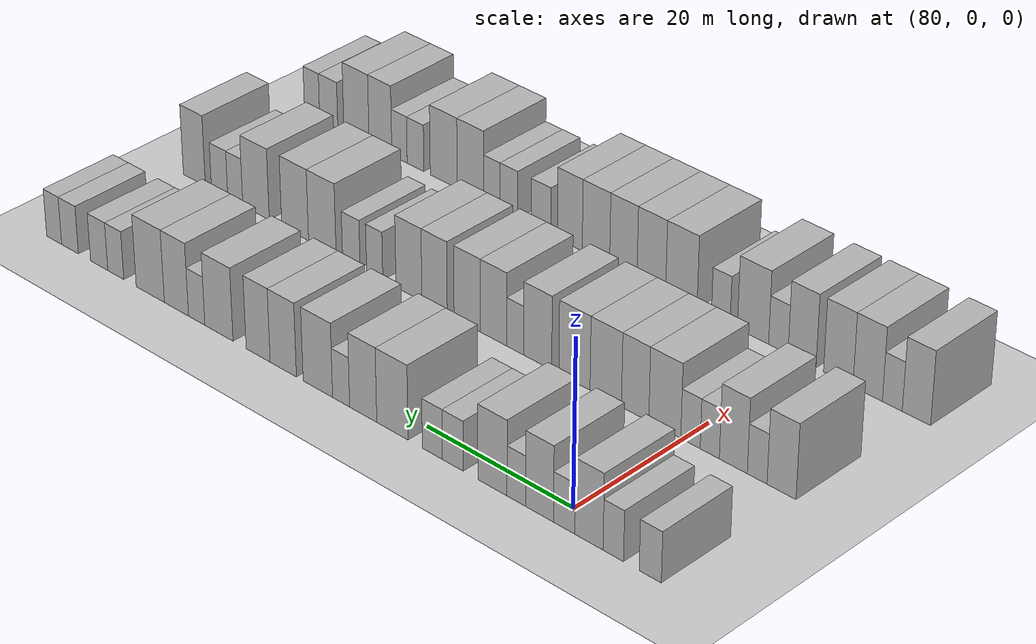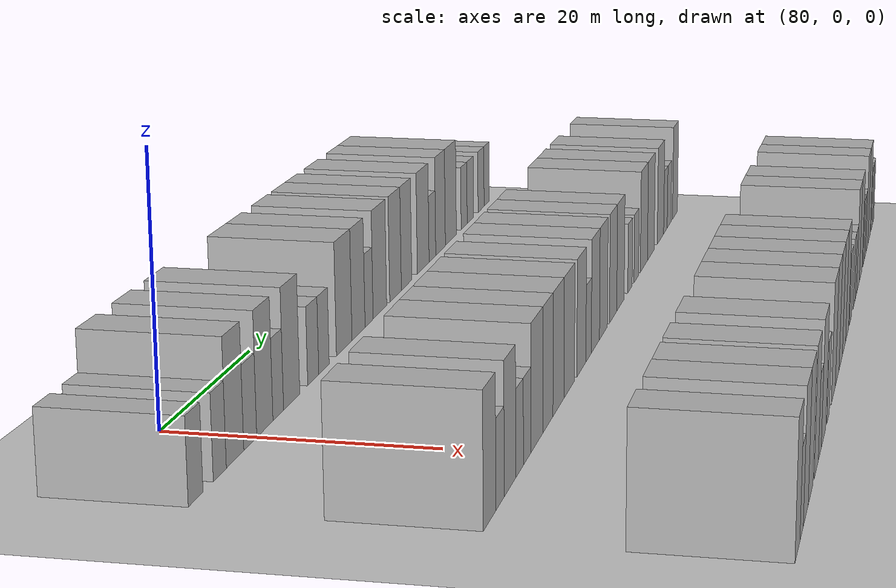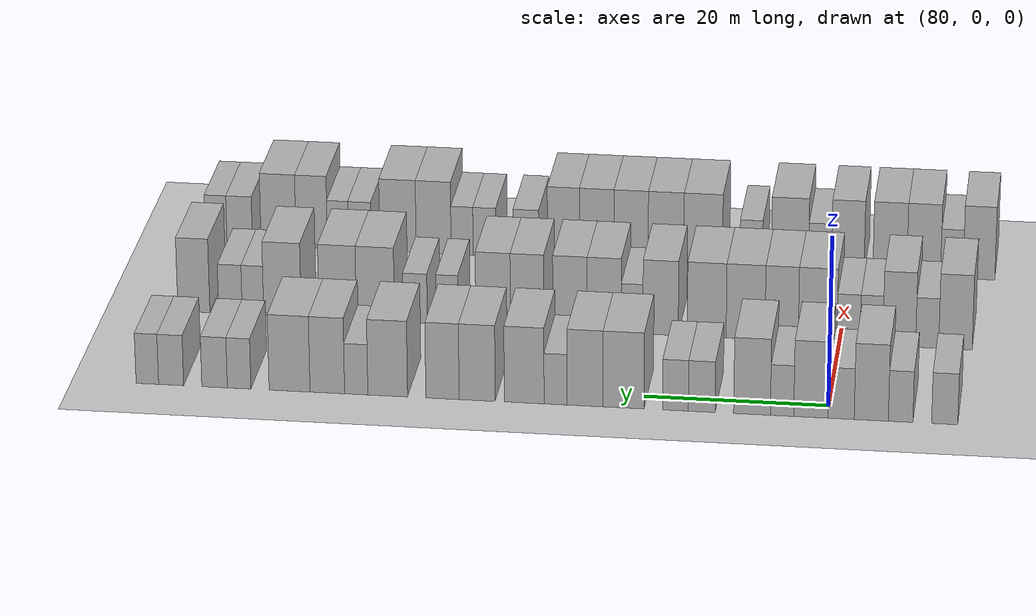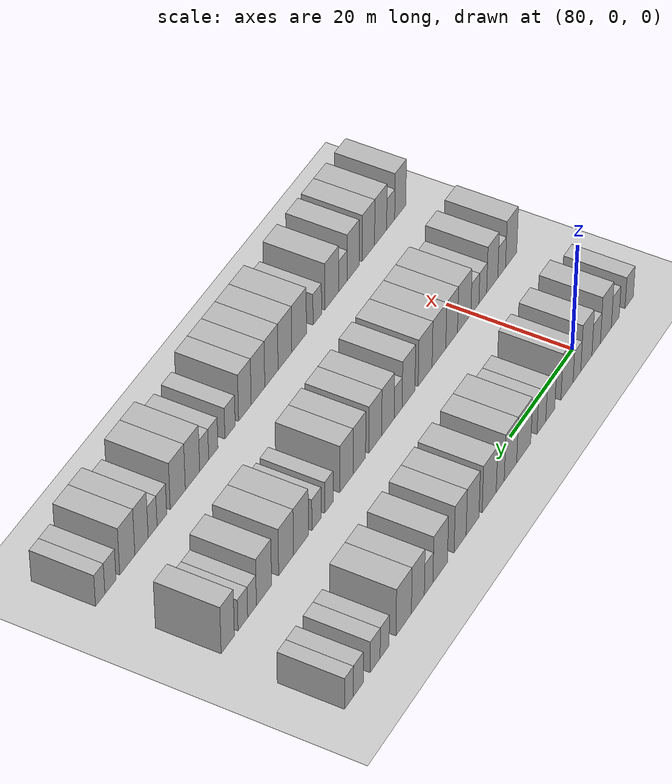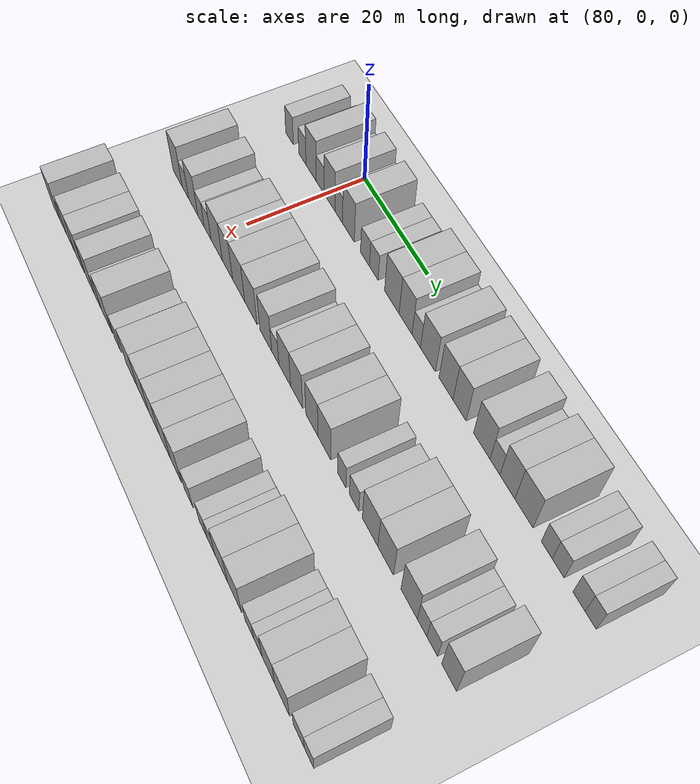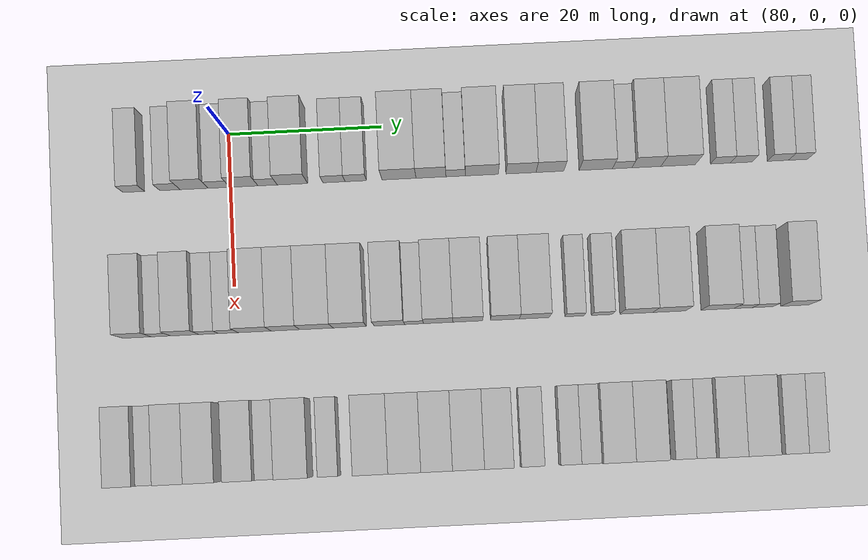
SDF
<sdf version="1.6">
 <world name="default">
  <include>
   <name>ground_plane_2</name>
   <uri>model://HANNAS_ground_plane</uri>
   <pose>100 0 0  0 0 0</pose>
  </include>
  <model name="building_606">
   <static>1</static>
   <pose>82.0000 -12.5891 0 0.000000 0.000000 0.000000</pose>
   <link name="link">
    <pose>0 0 3.00 0 0 0</pose>
    <collision name="collision"><geometry><box><size>10.0000 2.8003 6.0000</size></box></geometry></collision>
    <visual name="visual">
     <cast_shadows>0</cast_shadows>
     <geometry><box><size>10.0000 2.8003 6.0000</size></box></geometry>
     <material>
      <script>
       <uri>model://HANNAS_wall/materials/scripts</uri>
       <uri>model://HANNAS_wall/materials/textures</uri>
       <name>vrc/HANNAS_wall</name>
      </script>
     </material>
    </visual>
   </link>
  </model>
  <model name="building_607">
   <static>1</static>
   <pose>82.0000 -7.8719 0 0.000000 0.000000 0.000000</pose>
   <link name="link">
    <pose>0 0 3.00 0 0 0</pose>
    <collision name="collision"><geometry><box><size>10.0000 2.6342 6.0000</size></box></geometry></collision>
    <visual name="visual">
     <cast_shadows>0</cast_shadows>
     <geometry><box><size>10.0000 2.6342 6.0000</size></box></geometry>
     <material>
      <script>
       <uri>model://HANNAS_wall/materials/scripts</uri>
       <uri>model://HANNAS_wall/materials/textures</uri>
       <name>vrc/HANNAS_wall</name>
      </script>
     </material>
    </visual>
   </link>
  </model>
  <model name="building_608">
   <static>1</static>
   <pose>82.0000 -4.7250 0 0.000000 0.000000 0.000000</pose>
   <link name="link">
    <pose>0 0 4.50 0 0 0</pose>
    <collision name="collision"><geometry><box><size>10.0000 3.6595 9.0000</size></box></geometry></collision>
    <visual name="visual">
     <cast_shadows>0</cast_shadows>
     <geometry><box><size>10.0000 3.6595 9.0000</size></box></geometry>
     <material>
      <script>
       <uri>model://HANNAS_wall/materials/scripts</uri>
       <uri>model://HANNAS_wall/materials/textures</uri>
       <name>vrc/HANNAS_wall</name>
      </script>
     </material>
    </visual>
   </link>
  </model>
  <model name="building_609">
   <static>1</static>
   <pose>82.0000 -1.4847 0 0.000000 0.000000 0.000000</pose>
   <link name="link">
    <pose>0 0 3.00 0 0 0</pose>
    <collision name="collision"><geometry><box><size>10.0000 2.8210 6.0000</size></box></geometry></collision>
    <visual name="visual">
     <cast_shadows>0</cast_shadows>
     <geometry><box><size>10.0000 2.8210 6.0000</size></box></geometry>
     <material>
      <script>
       <uri>model://HANNAS_wall/materials/scripts</uri>
       <uri>model://HANNAS_wall/materials/textures</uri>
       <name>vrc/HANNAS_wall</name>
      </script>
     </material>
    </visual>
   </link>
  </model>
  <model name="building_610">
   <static>1</static>
   <pose>82.0000 1.7644 0 0.000000 0.000000 0.000000</pose>
   <link name="link">
    <pose>0 0 4.50 0 0 0</pose>
    <collision name="collision"><geometry><box><size>10.0000 3.6772 9.0000</size></box></geometry></collision>
    <visual name="visual">
     <cast_shadows>0</cast_shadows>
     <geometry><box><size>10.0000 3.6772 9.0000</size></box></geometry>
     <material>
      <script>
       <uri>model://HANNAS_wall/materials/scripts</uri>
       <uri>model://HANNAS_wall/materials/textures</uri>
       <name>vrc/HANNAS_wall</name>
      </script>
     </material>
    </visual>
   </link>
  </model>
  <model name="building_611">
   <static>1</static>
   <pose>82.0000 4.8568 0 0.000000 0.000000 0.000000</pose>
   <link name="link">
    <pose>0 0 3.00 0 0 0</pose>
    <collision name="collision"><geometry><box><size>10.0000 2.5077 6.0000</size></box></geometry></collision>
    <visual name="visual">
     <cast_shadows>0</cast_shadows>
     <geometry><box><size>10.0000 2.5077 6.0000</size></box></geometry>
     <material>
      <script>
       <uri>model://HANNAS_wall/materials/scripts</uri>
       <uri>model://HANNAS_wall/materials/textures</uri>
       <name>vrc/HANNAS_wall</name>
      </script>
     </material>
    </visual>
   </link>
  </model>
  <model name="building_612">
   <static>1</static>
   <pose>82.0000 8.0890 0 0.000000 0.000000 0.000000</pose>
   <link name="link">
    <pose>0 0 4.50 0 0 0</pose>
    <collision name="collision"><geometry><box><size>10.0000 3.9566 9.0000</size></box></geometry></collision>
    <visual name="visual">
     <cast_shadows>0</cast_shadows>
     <geometry><box><size>10.0000 3.9566 9.0000</size></box></geometry>
     <material>
      <script>
       <uri>model://HANNAS_wall/materials/scripts</uri>
       <uri>model://HANNAS_wall/materials/textures</uri>
       <name>vrc/HANNAS_wall</name>
      </script>
     </material>
    </visual>
   </link>
  </model>
  <model name="building_613">
   <static>1</static>
   <pose>82.0000 13.5123 0 0.000000 0.000000 0.000000</pose>
   <link name="link">
    <pose>0 0 3.00 0 0 0</pose>
    <collision name="collision"><geometry><box><size>10.0000 2.8900 6.0000</size></box></geometry></collision>
    <visual name="visual">
     <cast_shadows>0</cast_shadows>
     <geometry><box><size>10.0000 2.8900 6.0000</size></box></geometry>
     <material>
      <script>
       <uri>model://HANNAS_wall/materials/scripts</uri>
       <uri>model://HANNAS_wall/materials/textures</uri>
       <name>vrc/HANNAS_wall</name>
      </script>
     </material>
    </visual>
   </link>
  </model>
  <model name="building_614">
   <static>1</static>
   <pose>82.0000 16.3535 0 0.000000 0.000000 0.000000</pose>
   <link name="link">
    <pose>0 0 3.00 0 0 0</pose>
    <collision name="collision"><geometry><box><size>10.0000 2.7924 6.0000</size></box></geometry></collision>
    <visual name="visual">
     <cast_shadows>0</cast_shadows>
     <geometry><box><size>10.0000 2.7924 6.0000</size></box></geometry>
     <material>
      <script>
       <uri>model://HANNAS_wall/materials/scripts</uri>
       <uri>model://HANNAS_wall/materials/textures</uri>
       <name>vrc/HANNAS_wall</name>
      </script>
     </material>
    </visual>
   </link>
  </model>
  <model name="building_615">
   <static>1</static>
   <pose>82.0000 21.9774 0 0.000000 0.000000 0.000000</pose>
   <link name="link">
    <pose>0 0 4.50 0 0 0</pose>
    <collision name="collision"><geometry><box><size>10.0000 4.4553 9.0000</size></box></geometry></collision>
    <visual name="visual">
     <cast_shadows>0</cast_shadows>
     <geometry><box><size>10.0000 4.4553 9.0000</size></box></geometry>
     <material>
      <script>
       <uri>model://HANNAS_wall/materials/scripts</uri>
       <uri>model://HANNAS_wall/materials/textures</uri>
       <name>vrc/HANNAS_wall</name>
      </script>
     </material>
    </visual>
   </link>
  </model>
  <model name="building_616">
   <static>1</static>
   <pose>82.0000 26.1522 0 0.000000 0.000000 0.000000</pose>
   <link name="link">
    <pose>0 0 4.50 0 0 0</pose>
    <collision name="collision"><geometry><box><size>10.0000 3.8942 9.0000</size></box></geometry></collision>
    <visual name="visual">
     <cast_shadows>0</cast_shadows>
     <geometry><box><size>10.0000 3.8942 9.0000</size></box></geometry>
     <material>
      <script>
       <uri>model://HANNAS_wall/materials/scripts</uri>
       <uri>model://HANNAS_wall/materials/textures</uri>
       <name>vrc/HANNAS_wall</name>
      </script>
     </material>
    </visual>
   </link>
  </model>
  <model name="building_617">
   <static>1</static>
   <pose>82.0000 29.3459 0 0.000000 0.000000 0.000000</pose>
   <link name="link">
    <pose>0 0 3.00 0 0 0</pose>
    <collision name="collision"><geometry><box><size>10.0000 2.4934 6.0000</size></box></geometry></collision>
    <visual name="visual">
     <cast_shadows>0</cast_shadows>
     <geometry><box><size>10.0000 2.4934 6.0000</size></box></geometry>
     <material>
      <script>
       <uri>model://HANNAS_wall/materials/scripts</uri>
       <uri>model://HANNAS_wall/materials/textures</uri>
       <name>vrc/HANNAS_wall</name>
      </script>
     </material>
    </visual>
   </link>
  </model>
  <model name="building_618">
   <static>1</static>
   <pose>82.0000 32.7515 0 0.000000 0.000000 0.000000</pose>
   <link name="link">
    <pose>0 0 4.50 0 0 0</pose>
    <collision name="collision"><geometry><box><size>10.0000 4.3178 9.0000</size></box></geometry></collision>
    <visual name="visual">
     <cast_shadows>0</cast_shadows>
     <geometry><box><size>10.0000 4.3178 9.0000</size></box></geometry>
     <material>
      <script>
       <uri>model://HANNAS_wall/materials/scripts</uri>
       <uri>model://HANNAS_wall/materials/textures</uri>
       <name>vrc/HANNAS_wall</name>
      </script>
     </material>
    </visual>
   </link>
  </model>
  <model name="building_619">
   <static>1</static>
   <pose>82.0000 37.8709 0 0.000000 0.000000 0.000000</pose>
   <link name="link">
    <pose>0 0 4.50 0 0 0</pose>
    <collision name="collision"><geometry><box><size>10.0000 3.9211 9.0000</size></box></geometry></collision>
    <visual name="visual">
     <cast_shadows>0</cast_shadows>
     <geometry><box><size>10.0000 3.9211 9.0000</size></box></geometry>
     <material>
      <script>
       <uri>model://HANNAS_wall/materials/scripts</uri>
       <uri>model://HANNAS_wall/materials/textures</uri>
       <name>vrc/HANNAS_wall</name>
      </script>
     </material>
    </visual>
   </link>
  </model>
  <model name="building_620">
   <static>1</static>
   <pose>82.0000 41.6474 0 0.000000 0.000000 0.000000</pose>
   <link name="link">
    <pose>0 0 4.50 0 0 0</pose>
    <collision name="collision"><geometry><box><size>10.0000 3.6318 9.0000</size></box></geometry></collision>
    <visual name="visual">
     <cast_shadows>0</cast_shadows>
     <geometry><box><size>10.0000 3.6318 9.0000</size></box></geometry>
     <material>
      <script>
       <uri>model://HANNAS_wall/materials/scripts</uri>
       <uri>model://HANNAS_wall/materials/textures</uri>
       <name>vrc/HANNAS_wall</name>
      </script>
     </material>
    </visual>
   </link>
  </model>
  <model name="building_621">
   <static>1</static>
   <pose>82.0000 47.6344 0 0.000000 0.000000 0.000000</pose>
   <link name="link">
    <pose>0 0 4.50 0 0 0</pose>
    <collision name="collision"><geometry><box><size>10.0000 4.3422 9.0000</size></box></geometry></collision>
    <visual name="visual">
     <cast_shadows>0</cast_shadows>
     <geometry><box><size>10.0000 4.3422 9.0000</size></box></geometry>
     <material>
      <script>
       <uri>model://HANNAS_wall/materials/scripts</uri>
       <uri>model://HANNAS_wall/materials/textures</uri>
       <name>vrc/HANNAS_wall</name>
      </script>
     </material>
    </visual>
   </link>
  </model>
  <model name="building_622">
   <static>1</static>
   <pose>82.0000 51.0781 0 0.000000 0.000000 0.000000</pose>
   <link name="link">
    <pose>0 0 3.00 0 0 0</pose>
    <collision name="collision"><geometry><box><size>10.0000 2.5452 6.0000</size></box></geometry></collision>
    <visual name="visual">
     <cast_shadows>0</cast_shadows>
     <geometry><box><size>10.0000 2.5452 6.0000</size></box></geometry>
     <material>
      <script>
       <uri>model://HANNAS_wall/materials/scripts</uri>
       <uri>model://HANNAS_wall/materials/textures</uri>
       <name>vrc/HANNAS_wall</name>
      </script>
     </material>
    </visual>
   </link>
  </model>
  <model name="building_623">
   <static>1</static>
   <pose>82.0000 54.2477 0 0.000000 0.000000 0.000000</pose>
   <link name="link">
    <pose>0 0 4.50 0 0 0</pose>
    <collision name="collision"><geometry><box><size>10.0000 3.7941 9.0000</size></box></geometry></collision>
    <visual name="visual">
     <cast_shadows>0</cast_shadows>
     <geometry><box><size>10.0000 3.7941 9.0000</size></box></geometry>
     <material>
      <script>
       <uri>model://HANNAS_wall/materials/scripts</uri>
       <uri>model://HANNAS_wall/materials/textures</uri>
       <name>vrc/HANNAS_wall</name>
      </script>
     </material>
    </visual>
   </link>
  </model>
  <model name="building_624">
   <static>1</static>
   <pose>82.0000 58.3874 0 0.000000 0.000000 0.000000</pose>
   <link name="link">
    <pose>0 0 4.50 0 0 0</pose>
    <collision name="collision"><geometry><box><size>10.0000 4.4853 9.0000</size></box></geometry></collision>
    <visual name="visual">
     <cast_shadows>0</cast_shadows>
     <geometry><box><size>10.0000 4.4853 9.0000</size></box></geometry>
     <material>
      <script>
       <uri>model://HANNAS_wall/materials/scripts</uri>
       <uri>model://HANNAS_wall/materials/textures</uri>
       <name>vrc/HANNAS_wall</name>
      </script>
     </material>
    </visual>
   </link>
  </model>
  <model name="building_625">
   <static>1</static>
   <pose>82.0000 63.9290 0 0.000000 0.000000 0.000000</pose>
   <link name="link">
    <pose>0 0 3.00 0 0 0</pose>
    <collision name="collision"><geometry><box><size>10.0000 2.5979 6.0000</size></box></geometry></collision>
    <visual name="visual">
     <cast_shadows>0</cast_shadows>
     <geometry><box><size>10.0000 2.5979 6.0000</size></box></geometry>
     <material>
      <script>
       <uri>model://HANNAS_wall/materials/scripts</uri>
       <uri>model://HANNAS_wall/materials/textures</uri>
       <name>vrc/HANNAS_wall</name>
      </script>
     </material>
    </visual>
   </link>
  </model>
  <model name="building_626">
   <static>1</static>
   <pose>82.0000 66.6331 0 0.000000 0.000000 0.000000</pose>
   <link name="link">
    <pose>0 0 3.00 0 0 0</pose>
    <collision name="collision"><geometry><box><size>10.0000 2.8103 6.0000</size></box></geometry></collision>
    <visual name="visual">
     <cast_shadows>0</cast_shadows>
     <geometry><box><size>10.0000 2.8103 6.0000</size></box></geometry>
     <material>
      <script>
       <uri>model://HANNAS_wall/materials/scripts</uri>
       <uri>model://HANNAS_wall/materials/textures</uri>
       <name>vrc/HANNAS_wall</name>
      </script>
     </material>
    </visual>
   </link>
  </model>
  <model name="building_627">
   <static>1</static>
   <pose>82.0000 71.4227 0 0.000000 0.000000 0.000000</pose>
   <link name="link">
    <pose>0 0 3.00 0 0 0</pose>
    <collision name="collision"><geometry><box><size>10.0000 2.7689 6.0000</size></box></geometry></collision>
    <visual name="visual">
     <cast_shadows>0</cast_shadows>
     <geometry><box><size>10.0000 2.7689 6.0000</size></box></geometry>
     <material>
      <script>
       <uri>model://HANNAS_wall/materials/scripts</uri>
       <uri>model://HANNAS_wall/materials/textures</uri>
       <name>vrc/HANNAS_wall</name>
      </script>
     </material>
    </visual>
   </link>
  </model>
  <model name="building_628">
   <static>1</static>
   <pose>82.0000 74.0487 0 0.000000 0.000000 0.000000</pose>
   <link name="link">
    <pose>0 0 3.00 0 0 0</pose>
    <collision name="collision"><geometry><box><size>10.0000 2.4831 6.0000</size></box></geometry></collision>
    <visual name="visual">
     <cast_shadows>0</cast_shadows>
     <geometry><box><size>10.0000 2.4831 6.0000</size></box></geometry>
     <material>
      <script>
       <uri>model://HANNAS_wall/materials/scripts</uri>
       <uri>model://HANNAS_wall/materials/textures</uri>
       <name>vrc/HANNAS_wall</name>
      </script>
     </material>
    </visual>
   </link>
  </model>
  <model name="building_779">
   <static>1</static>
   <pose>101.0000 -12.7955 0 0.000000 0.000000 0.000000</pose>
   <link name="link">
    <pose>0 0 4.50 0 0 0</pose>
    <collision name="collision"><geometry><box><size>10.0000 3.6922 9.0000</size></box></geometry></collision>
    <visual name="visual">
     <cast_shadows>0</cast_shadows>
     <geometry><box><size>10.0000 3.6922 9.0000</size></box></geometry>
     <material>
      <script>
       <uri>model://HANNAS_wall/materials/scripts</uri>
       <uri>model://HANNAS_wall/materials/textures</uri>
       <name>vrc/HANNAS_wall</name>
      </script>
     </material>
    </visual>
   </link>
  </model>
  <model name="building_780">
   <static>1</static>
   <pose>101.0000 -9.6807 0 0.000000 0.000000 0.000000</pose>
   <link name="link">
    <pose>0 0 3.00 0 0 0</pose>
    <collision name="collision"><geometry><box><size>10.0000 2.5374 6.0000</size></box></geometry></collision>
    <visual name="visual">
     <cast_shadows>0</cast_shadows>
     <geometry><box><size>10.0000 2.5374 6.0000</size></box></geometry>
     <material>
      <script>
       <uri>model://HANNAS_wall/materials/scripts</uri>
       <uri>model://HANNAS_wall/materials/textures</uri>
       <name>vrc/HANNAS_wall</name>
      </script>
     </material>
    </visual>
   </link>
  </model>
  <model name="building_781">
   <static>1</static>
   <pose>101.0000 -6.5957 0 0.000000 0.000000 0.000000</pose>
   <link name="link">
    <pose>0 0 4.50 0 0 0</pose>
    <collision name="collision"><geometry><box><size>10.0000 3.6326 9.0000</size></box></geometry></collision>
    <visual name="visual">
     <cast_shadows>0</cast_shadows>
     <geometry><box><size>10.0000 3.6326 9.0000</size></box></geometry>
     <material>
      <script>
       <uri>model://HANNAS_wall/materials/scripts</uri>
       <uri>model://HANNAS_wall/materials/textures</uri>
       <name>vrc/HANNAS_wall</name>
      </script>
     </material>
    </visual>
   </link>
  </model>
  <model name="building_782">
   <static>1</static>
   <pose>101.0000 -3.5245 0 0.000000 0.000000 0.000000</pose>
   <link name="link">
    <pose>0 0 3.00 0 0 0</pose>
    <collision name="collision"><geometry><box><size>10.0000 2.5097 6.0000</size></box></geometry></collision>
    <visual name="visual">
     <cast_shadows>0</cast_shadows>
     <geometry><box><size>10.0000 2.5097 6.0000</size></box></geometry>
     <material>
      <script>
       <uri>model://HANNAS_wall/materials/scripts</uri>
       <uri>model://HANNAS_wall/materials/textures</uri>
       <name>vrc/HANNAS_wall</name>
      </script>
     </material>
    </visual>
   </link>
  </model>
  <model name="building_783">
   <static>1</static>
   <pose>101.0000 -0.9851 0 0.000000 0.000000 0.000000</pose>
   <link name="link">
    <pose>0 0 3.00 0 0 0</pose>
    <collision name="collision"><geometry><box><size>10.0000 2.5691 6.0000</size></box></geometry></collision>
    <visual name="visual">
     <cast_shadows>0</cast_shadows>
     <geometry><box><size>10.0000 2.5691 6.0000</size></box></geometry>
     <material>
      <script>
       <uri>model://HANNAS_wall/materials/scripts</uri>
       <uri>model://HANNAS_wall/materials/textures</uri>
       <name>vrc/HANNAS_wall</name>
      </script>
     </material>
    </visual>
   </link>
  </model>
  <model name="building_784">
   <static>1</static>
   <pose>101.0000 2.4388 0 0.000000 0.000000 0.000000</pose>
   <link name="link">
    <pose>0 0 4.50 0 0 0</pose>
    <collision name="collision"><geometry><box><size>10.0000 4.2785 9.0000</size></box></geometry></collision>
    <visual name="visual">
     <cast_shadows>0</cast_shadows>
     <geometry><box><size>10.0000 4.2785 9.0000</size></box></geometry>
     <material>
      <script>
       <uri>model://HANNAS_wall/materials/scripts</uri>
       <uri>model://HANNAS_wall/materials/textures</uri>
       <name>vrc/HANNAS_wall</name>
      </script>
     </material>
    </visual>
   </link>
  </model>
  <model name="building_785">
   <static>1</static>
   <pose>101.0000 6.4285 0 0.000000 0.000000 0.000000</pose>
   <link name="link">
    <pose>0 0 4.50 0 0 0</pose>
    <collision name="collision"><geometry><box><size>10.0000 3.7009 9.0000</size></box></geometry></collision>
    <visual name="visual">
     <cast_shadows>0</cast_shadows>
     <geometry><box><size>10.0000 3.7009 9.0000</size></box></geometry>
     <material>
      <script>
       <uri>model://HANNAS_wall/materials/scripts</uri>
       <uri>model://HANNAS_wall/materials/textures</uri>
       <name>vrc/HANNAS_wall</name>
      </script>
     </material>
    </visual>
   </link>
  </model>
  <model name="building_786">
   <static>1</static>
   <pose>101.0000 10.4357 0 0.000000 0.000000 0.000000</pose>
   <link name="link">
    <pose>0 0 4.50 0 0 0</pose>
    <collision name="collision"><geometry><box><size>10.0000 4.3135 9.0000</size></box></geometry></collision>
    <visual name="visual">
     <cast_shadows>0</cast_shadows>
     <geometry><box><size>10.0000 4.3135 9.0000</size></box></geometry>
     <material>
      <script>
       <uri>model://HANNAS_wall/materials/scripts</uri>
       <uri>model://HANNAS_wall/materials/textures</uri>
       <name>vrc/HANNAS_wall</name>
      </script>
     </material>
    </visual>
   </link>
  </model>
  <model name="building_787">
   <static>1</static>
   <pose>101.0000 14.7585 0 0.000000 0.000000 0.000000</pose>
   <link name="link">
    <pose>0 0 4.50 0 0 0</pose>
    <collision name="collision"><geometry><box><size>10.0000 4.3321 9.0000</size></box></geometry></collision>
    <visual name="visual">
     <cast_shadows>0</cast_shadows>
     <geometry><box><size>10.0000 4.3321 9.0000</size></box></geometry>
     <material>
      <script>
       <uri>model://HANNAS_wall/materials/scripts</uri>
       <uri>model://HANNAS_wall/materials/textures</uri>
       <name>vrc/HANNAS_wall</name>
      </script>
     </material>
    </visual>
   </link>
  </model>
  <model name="building_788">
   <static>1</static>
   <pose>101.0000 19.8965 0 0.000000 0.000000 0.000000</pose>
   <link name="link">
    <pose>0 0 4.50 0 0 0</pose>
    <collision name="collision"><geometry><box><size>10.0000 3.9439 9.0000</size></box></geometry></collision>
    <visual name="visual">
     <cast_shadows>0</cast_shadows>
     <geometry><box><size>10.0000 3.9439 9.0000</size></box></geometry>
     <material>
      <script>
       <uri>model://HANNAS_wall/materials/scripts</uri>
       <uri>model://HANNAS_wall/materials/textures</uri>
       <name>vrc/HANNAS_wall</name>
      </script>
     </material>
    </visual>
   </link>
  </model>
  <model name="building_789">
   <static>1</static>
   <pose>101.0000 23.0837 0 0.000000 0.000000 0.000000</pose>
   <link name="link">
    <pose>0 0 3.00 0 0 0</pose>
    <collision name="collision"><geometry><box><size>10.0000 2.4306 6.0000</size></box></geometry></collision>
    <visual name="visual">
     <cast_shadows>0</cast_shadows>
     <geometry><box><size>10.0000 2.4306 6.0000</size></box></geometry>
     <material>
      <script>
       <uri>model://HANNAS_wall/materials/scripts</uri>
       <uri>model://HANNAS_wall/materials/textures</uri>
       <name>vrc/HANNAS_wall</name>
      </script>
     </material>
    </visual>
   </link>
  </model>
  <model name="building_790">
   <static>1</static>
   <pose>101.0000 26.1977 0 0.000000 0.000000 0.000000</pose>
   <link name="link">
    <pose>0 0 4.50 0 0 0</pose>
    <collision name="collision"><geometry><box><size>10.0000 3.7974 9.0000</size></box></geometry></collision>
    <visual name="visual">
     <cast_shadows>0</cast_shadows>
     <geometry><box><size>10.0000 3.7974 9.0000</size></box></geometry>
     <material>
      <script>
       <uri>model://HANNAS_wall/materials/scripts</uri>
       <uri>model://HANNAS_wall/materials/textures</uri>
       <name>vrc/HANNAS_wall</name>
      </script>
     </material>
    </visual>
   </link>
  </model>
  <model name="building_791">
   <static>1</static>
   <pose>101.0000 30.0190 0 0.000000 0.000000 0.000000</pose>
   <link name="link">
    <pose>0 0 4.50 0 0 0</pose>
    <collision name="collision"><geometry><box><size>10.0000 3.8452 9.0000</size></box></geometry></collision>
    <visual name="visual">
     <cast_shadows>0</cast_shadows>
     <geometry><box><size>10.0000 3.8452 9.0000</size></box></geometry>
     <material>
      <script>
       <uri>model://HANNAS_wall/materials/scripts</uri>
       <uri>model://HANNAS_wall/materials/textures</uri>
       <name>vrc/HANNAS_wall</name>
      </script>
     </material>
    </visual>
   </link>
  </model>
  <model name="building_792">
   <static>1</static>
   <pose>101.0000 34.8164 0 0.000000 0.000000 0.000000</pose>
   <link name="link">
    <pose>0 0 4.50 0 0 0</pose>
    <collision name="collision"><geometry><box><size>10.0000 3.7497 9.0000</size></box></geometry></collision>
    <visual name="visual">
     <cast_shadows>0</cast_shadows>
     <geometry><box><size>10.0000 3.7497 9.0000</size></box></geometry>
     <material>
      <script>
       <uri>model://HANNAS_wall/materials/scripts</uri>
       <uri>model://HANNAS_wall/materials/textures</uri>
       <name>vrc/HANNAS_wall</name>
      </script>
     </material>
    </visual>
   </link>
  </model>
  <model name="building_793">
   <static>1</static>
   <pose>101.0000 38.6359 0 0.000000 0.000000 0.000000</pose>
   <link name="link">
    <pose>0 0 4.50 0 0 0</pose>
    <collision name="collision"><geometry><box><size>10.0000 3.8893 9.0000</size></box></geometry></collision>
    <visual name="visual">
     <cast_shadows>0</cast_shadows>
     <geometry><box><size>10.0000 3.8893 9.0000</size></box></geometry>
     <material>
      <script>
       <uri>model://HANNAS_wall/materials/scripts</uri>
       <uri>model://HANNAS_wall/materials/textures</uri>
       <name>vrc/HANNAS_wall</name>
      </script>
     </material>
    </visual>
   </link>
  </model>
  <model name="building_794">
   <static>1</static>
   <pose>101.0000 43.8081 0 0.000000 0.000000 0.000000</pose>
   <link name="link">
    <pose>0 0 3.00 0 0 0</pose>
    <collision name="collision"><geometry><box><size>10.0000 2.4552 6.0000</size></box></geometry></collision>
    <visual name="visual">
     <cast_shadows>0</cast_shadows>
     <geometry><box><size>10.0000 2.4552 6.0000</size></box></geometry>
     <material>
      <script>
       <uri>model://HANNAS_wall/materials/scripts</uri>
       <uri>model://HANNAS_wall/materials/textures</uri>
       <name>vrc/HANNAS_wall</name>
      </script>
     </material>
    </visual>
   </link>
  </model>
  <model name="building_795">
   <static>1</static>
   <pose>101.0000 47.3837 0 0.000000 0.000000 0.000000</pose>
   <link name="link">
    <pose>0 0 3.00 0 0 0</pose>
    <collision name="collision"><geometry><box><size>10.0000 2.6960 6.0000</size></box></geometry></collision>
    <visual name="visual">
     <cast_shadows>0</cast_shadows>
     <geometry><box><size>10.0000 2.6960 6.0000</size></box></geometry>
     <material>
      <script>
       <uri>model://HANNAS_wall/materials/scripts</uri>
       <uri>model://HANNAS_wall/materials/textures</uri>
       <name>vrc/HANNAS_wall</name>
      </script>
     </material>
    </visual>
   </link>
  </model>
  <model name="building_796">
   <static>1</static>
   <pose>101.0000 51.8813 0 0.000000 0.000000 0.000000</pose>
   <link name="link">
    <pose>0 0 4.50 0 0 0</pose>
    <collision name="collision"><geometry><box><size>10.0000 4.2991 9.0000</size></box></geometry></collision>
    <visual name="visual">
     <cast_shadows>0</cast_shadows>
     <geometry><box><size>10.0000 4.2991 9.0000</size></box></geometry>
     <material>
      <script>
       <uri>model://HANNAS_wall/materials/scripts</uri>
       <uri>model://HANNAS_wall/materials/textures</uri>
       <name>vrc/HANNAS_wall</name>
      </script>
     </material>
    </visual>
   </link>
  </model>
  <model name="building_797">
   <static>1</static>
   <pose>101.0000 56.1444 0 0.000000 0.000000 0.000000</pose>
   <link name="link">
    <pose>0 0 4.50 0 0 0</pose>
    <collision name="collision"><geometry><box><size>10.0000 4.2272 9.0000</size></box></geometry></collision>
    <visual name="visual">
     <cast_shadows>0</cast_shadows>
     <geometry><box><size>10.0000 4.2272 9.0000</size></box></geometry>
     <material>
      <script>
       <uri>model://HANNAS_wall/materials/scripts</uri>
       <uri>model://HANNAS_wall/materials/textures</uri>
       <name>vrc/HANNAS_wall</name>
      </script>
     </material>
    </visual>
   </link>
  </model>
  <model name="building_798">
   <static>1</static>
   <pose>101.0000 62.3849 0 0.000000 0.000000 0.000000</pose>
   <link name="link">
    <pose>0 0 4.50 0 0 0</pose>
    <collision name="collision"><geometry><box><size>10.0000 4.2537 9.0000</size></box></geometry></collision>
    <visual name="visual">
     <cast_shadows>0</cast_shadows>
     <geometry><box><size>10.0000 4.2537 9.0000</size></box></geometry>
     <material>
      <script>
       <uri>model://HANNAS_wall/materials/scripts</uri>
       <uri>model://HANNAS_wall/materials/textures</uri>
       <name>vrc/HANNAS_wall</name>
      </script>
     </material>
    </visual>
   </link>
  </model>
  <model name="building_799">
   <static>1</static>
   <pose>101.0000 65.7316 0 0.000000 0.000000 0.000000</pose>
   <link name="link">
    <pose>0 0 3.00 0 0 0</pose>
    <collision name="collision"><geometry><box><size>10.0000 2.4396 6.0000</size></box></geometry></collision>
    <visual name="visual">
     <cast_shadows>0</cast_shadows>
     <geometry><box><size>10.0000 2.4396 6.0000</size></box></geometry>
     <material>
      <script>
       <uri>model://HANNAS_wall/materials/scripts</uri>
       <uri>model://HANNAS_wall/materials/textures</uri>
       <name>vrc/HANNAS_wall</name>
      </script>
     </material>
    </visual>
   </link>
  </model>
  <model name="building_800">
   <static>1</static>
   <pose>101.0000 68.2859 0 0.000000 0.000000 0.000000</pose>
   <link name="link">
    <pose>0 0 3.00 0 0 0</pose>
    <collision name="collision"><geometry><box><size>10.0000 2.6691 6.0000</size></box></geometry></collision>
    <visual name="visual">
     <cast_shadows>0</cast_shadows>
     <geometry><box><size>10.0000 2.6691 6.0000</size></box></geometry>
     <material>
      <script>
       <uri>model://HANNAS_wall/materials/scripts</uri>
       <uri>model://HANNAS_wall/materials/textures</uri>
       <name>vrc/HANNAS_wall</name>
      </script>
     </material>
    </visual>
   </link>
  </model>
  <model name="building_801">
   <static>1</static>
   <pose>101.0000 72.4386 0 0.000000 0.000000 0.000000</pose>
   <link name="link">
    <pose>0 0 4.50 0 0 0</pose>
    <collision name="collision"><geometry><box><size>10.0000 3.6362 9.0000</size></box></geometry></collision>
    <visual name="visual">
     <cast_shadows>0</cast_shadows>
     <geometry><box><size>10.0000 3.6362 9.0000</size></box></geometry>
     <material>
      <script>
       <uri>model://HANNAS_wall/materials/scripts</uri>
       <uri>model://HANNAS_wall/materials/textures</uri>
       <name>vrc/HANNAS_wall</name>
      </script>
     </material>
    </visual>
   </link>
  </model>
  <model name="building_956">
   <static>1</static>
   <pose>120.0000 -14.5264 0 0.000000 0.000000 0.000000</pose>
   <link name="link">
    <pose>0 0 4.50 0 0 0</pose>
    <collision name="collision"><geometry><box><size>10.0000 3.6056 9.0000</size></box></geometry></collision>
    <visual name="visual">
     <cast_shadows>0</cast_shadows>
     <geometry><box><size>10.0000 3.6056 9.0000</size></box></geometry>
     <material>
      <script>
       <uri>model://HANNAS_wall/materials/scripts</uri>
       <uri>model://HANNAS_wall/materials/textures</uri>
       <name>vrc/HANNAS_wall</name>
      </script>
     </material>
    </visual>
   </link>
  </model>
  <model name="building_957">
   <static>1</static>
   <pose>120.0000 -11.4469 0 0.000000 0.000000 0.000000</pose>
   <link name="link">
    <pose>0 0 3.00 0 0 0</pose>
    <collision name="collision"><geometry><box><size>10.0000 2.5535 6.0000</size></box></geometry></collision>
    <visual name="visual">
     <cast_shadows>0</cast_shadows>
     <geometry><box><size>10.0000 2.5535 6.0000</size></box></geometry>
     <material>
      <script>
       <uri>model://HANNAS_wall/materials/scripts</uri>
       <uri>model://HANNAS_wall/materials/textures</uri>
       <name>vrc/HANNAS_wall</name>
      </script>
     </material>
    </visual>
   </link>
  </model>
  <model name="building_958">
   <static>1</static>
   <pose>120.0000 -8.2546 0 0.000000 0.000000 0.000000</pose>
   <link name="link">
    <pose>0 0 4.50 0 0 0</pose>
    <collision name="collision"><geometry><box><size>10.0000 3.8311 9.0000</size></box></geometry></collision>
    <visual name="visual">
     <cast_shadows>0</cast_shadows>
     <geometry><box><size>10.0000 3.8311 9.0000</size></box></geometry>
     <material>
      <script>
       <uri>model://HANNAS_wall/materials/scripts</uri>
       <uri>model://HANNAS_wall/materials/textures</uri>
       <name>vrc/HANNAS_wall</name>
      </script>
     </material>
    </visual>
   </link>
  </model>
  <model name="building_959">
   <static>1</static>
   <pose>120.0000 -4.4006 0 0.000000 0.000000 0.000000</pose>
   <link name="link">
    <pose>0 0 4.50 0 0 0</pose>
    <collision name="collision"><geometry><box><size>10.0000 3.8770 9.0000</size></box></geometry></collision>
    <visual name="visual">
     <cast_shadows>0</cast_shadows>
     <geometry><box><size>10.0000 3.8770 9.0000</size></box></geometry>
     <material>
      <script>
       <uri>model://HANNAS_wall/materials/scripts</uri>
       <uri>model://HANNAS_wall/materials/textures</uri>
       <name>vrc/HANNAS_wall</name>
      </script>
     </material>
    </visual>
   </link>
  </model>
  <model name="building_960">
   <static>1</static>
   <pose>120.0000 0.3996 0 0.000000 0.000000 0.000000</pose>
   <link name="link">
    <pose>0 0 4.50 0 0 0</pose>
    <collision name="collision"><geometry><box><size>10.0000 3.7232 9.0000</size></box></geometry></collision>
    <visual name="visual">
     <cast_shadows>0</cast_shadows>
     <geometry><box><size>10.0000 3.7232 9.0000</size></box></geometry>
     <material>
      <script>
       <uri>model://HANNAS_wall/materials/scripts</uri>
       <uri>model://HANNAS_wall/materials/textures</uri>
       <name>vrc/HANNAS_wall</name>
      </script>
     </material>
    </visual>
   </link>
  </model>
  <model name="building_961">
   <static>1</static>
   <pose>120.0000 3.5802 0 0.000000 0.000000 0.000000</pose>
   <link name="link">
    <pose>0 0 3.00 0 0 0</pose>
    <collision name="collision"><geometry><box><size>10.0000 2.6379 6.0000</size></box></geometry></collision>
    <visual name="visual">
     <cast_shadows>0</cast_shadows>
     <geometry><box><size>10.0000 2.6379 6.0000</size></box></geometry>
     <material>
      <script>
       <uri>model://HANNAS_wall/materials/scripts</uri>
       <uri>model://HANNAS_wall/materials/textures</uri>
       <name>vrc/HANNAS_wall</name>
      </script>
     </material>
    </visual>
   </link>
  </model>
  <model name="building_962">
   <static>1</static>
   <pose>120.0000 7.0253 0 0.000000 0.000000 0.000000</pose>
   <link name="link">
    <pose>0 0 4.50 0 0 0</pose>
    <collision name="collision"><geometry><box><size>10.0000 4.2523 9.0000</size></box></geometry></collision>
    <visual name="visual">
     <cast_shadows>0</cast_shadows>
     <geometry><box><size>10.0000 4.2523 9.0000</size></box></geometry>
     <material>
      <script>
       <uri>model://HANNAS_wall/materials/scripts</uri>
       <uri>model://HANNAS_wall/materials/textures</uri>
       <name>vrc/HANNAS_wall</name>
      </script>
     </material>
    </visual>
   </link>
  </model>
  <model name="building_963">
   <static>1</static>
   <pose>120.0000 11.4425 0 0.000000 0.000000 0.000000</pose>
   <link name="link">
    <pose>0 0 3.00 0 0 0</pose>
    <collision name="collision"><geometry><box><size>10.0000 2.5822 6.0000</size></box></geometry></collision>
    <visual name="visual">
     <cast_shadows>0</cast_shadows>
     <geometry><box><size>10.0000 2.5822 6.0000</size></box></geometry>
     <material>
      <script>
       <uri>model://HANNAS_wall/materials/scripts</uri>
       <uri>model://HANNAS_wall/materials/textures</uri>
       <name>vrc/HANNAS_wall</name>
      </script>
     </material>
    </visual>
   </link>
  </model>
  <model name="building_964">
   <static>1</static>
   <pose>120.0000 16.9472 0 0.000000 0.000000 0.000000</pose>
   <link name="link">
    <pose>0 0 4.50 0 0 0</pose>
    <collision name="collision"><geometry><box><size>10.0000 4.4272 9.0000</size></box></geometry></collision>
    <visual name="visual">
     <cast_shadows>0</cast_shadows>
     <geometry><box><size>10.0000 4.4272 9.0000</size></box></geometry>
     <material>
      <script>
       <uri>model://HANNAS_wall/materials/scripts</uri>
       <uri>model://HANNAS_wall/materials/textures</uri>
       <name>vrc/HANNAS_wall</name>
      </script>
     </material>
    </visual>
   </link>
  </model>
  <model name="building_965">
   <static>1</static>
   <pose>120.0000 21.2060 0 0.000000 0.000000 0.000000</pose>
   <link name="link">
    <pose>0 0 4.50 0 0 0</pose>
    <collision name="collision"><geometry><box><size>10.0000 4.0903 9.0000</size></box></geometry></collision>
    <visual name="visual">
     <cast_shadows>0</cast_shadows>
     <geometry><box><size>10.0000 4.0903 9.0000</size></box></geometry>
     <material>
      <script>
       <uri>model://HANNAS_wall/materials/scripts</uri>
       <uri>model://HANNAS_wall/materials/textures</uri>
       <name>vrc/HANNAS_wall</name>
      </script>
     </material>
    </visual>
   </link>
  </model>
  <model name="building_966">
   <static>1</static>
   <pose>120.0000 25.2211 0 0.000000 0.000000 0.000000</pose>
   <link name="link">
    <pose>0 0 4.50 0 0 0</pose>
    <collision name="collision"><geometry><box><size>10.0000 3.9400 9.0000</size></box></geometry></collision>
    <visual name="visual">
     <cast_shadows>0</cast_shadows>
     <geometry><box><size>10.0000 3.9400 9.0000</size></box></geometry>
     <material>
      <script>
       <uri>model://HANNAS_wall/materials/scripts</uri>
       <uri>model://HANNAS_wall/materials/textures</uri>
       <name>vrc/HANNAS_wall</name>
      </script>
     </material>
    </visual>
   </link>
  </model>
  <model name="building_967">
   <static>1</static>
   <pose>120.0000 29.1840 0 0.000000 0.000000 0.000000</pose>
   <link name="link">
    <pose>0 0 4.50 0 0 0</pose>
    <collision name="collision"><geometry><box><size>10.0000 3.9858 9.0000</size></box></geometry></collision>
    <visual name="visual">
     <cast_shadows>0</cast_shadows>
     <geometry><box><size>10.0000 3.9858 9.0000</size></box></geometry>
     <material>
      <script>
       <uri>model://HANNAS_wall/materials/scripts</uri>
       <uri>model://HANNAS_wall/materials/textures</uri>
       <name>vrc/HANNAS_wall</name>
      </script>
     </material>
    </visual>
   </link>
  </model>
  <model name="building_968">
   <static>1</static>
   <pose>120.0000 33.0144 0 0.000000 0.000000 0.000000</pose>
   <link name="link">
    <pose>0 0 4.50 0 0 0</pose>
    <collision name="collision"><geometry><box><size>10.0000 3.6751 9.0000</size></box></geometry></collision>
    <visual name="visual">
     <cast_shadows>0</cast_shadows>
     <geometry><box><size>10.0000 3.6751 9.0000</size></box></geometry>
     <material>
      <script>
       <uri>model://HANNAS_wall/materials/scripts</uri>
       <uri>model://HANNAS_wall/materials/textures</uri>
       <name>vrc/HANNAS_wall</name>
      </script>
     </material>
    </visual>
   </link>
  </model>
  <model name="building_969">
   <static>1</static>
   <pose>120.0000 37.3290 0 0.000000 0.000000 0.000000</pose>
   <link name="link">
    <pose>0 0 3.00 0 0 0</pose>
    <collision name="collision"><geometry><box><size>10.0000 2.9541 6.0000</size></box></geometry></collision>
    <visual name="visual">
     <cast_shadows>0</cast_shadows>
     <geometry><box><size>10.0000 2.9541 6.0000</size></box></geometry>
     <material>
      <script>
       <uri>model://HANNAS_wall/materials/scripts</uri>
       <uri>model://HANNAS_wall/materials/textures</uri>
       <name>vrc/HANNAS_wall</name>
      </script>
     </material>
    </visual>
   </link>
  </model>
  <model name="building_970">
   <static>1</static>
   <pose>120.0000 42.1287 0 0.000000 0.000000 0.000000</pose>
   <link name="link">
    <pose>0 0 3.00 0 0 0</pose>
    <collision name="collision"><geometry><box><size>10.0000 2.6453 6.0000</size></box></geometry></collision>
    <visual name="visual">
     <cast_shadows>0</cast_shadows>
     <geometry><box><size>10.0000 2.6453 6.0000</size></box></geometry>
     <material>
      <script>
       <uri>model://HANNAS_wall/materials/scripts</uri>
       <uri>model://HANNAS_wall/materials/textures</uri>
       <name>vrc/HANNAS_wall</name>
      </script>
     </material>
    </visual>
   </link>
  </model>
  <model name="building_971">
   <static>1</static>
   <pose>120.0000 44.7206 0 0.000000 0.000000 0.000000</pose>
   <link name="link">
    <pose>0 0 3.00 0 0 0</pose>
    <collision name="collision"><geometry><box><size>10.0000 2.5384 6.0000</size></box></geometry></collision>
    <visual name="visual">
     <cast_shadows>0</cast_shadows>
     <geometry><box><size>10.0000 2.5384 6.0000</size></box></geometry>
     <material>
      <script>
       <uri>model://HANNAS_wall/materials/scripts</uri>
       <uri>model://HANNAS_wall/materials/textures</uri>
       <name>vrc/HANNAS_wall</name>
      </script>
     </material>
    </visual>
   </link>
  </model>
  <model name="building_972">
   <static>1</static>
   <pose>120.0000 48.0215 0 0.000000 0.000000 0.000000</pose>
   <link name="link">
    <pose>0 0 4.50 0 0 0</pose>
    <collision name="collision"><geometry><box><size>10.0000 4.0634 9.0000</size></box></geometry></collision>
    <visual name="visual">
     <cast_shadows>0</cast_shadows>
     <geometry><box><size>10.0000 4.0634 9.0000</size></box></geometry>
     <material>
      <script>
       <uri>model://HANNAS_wall/materials/scripts</uri>
       <uri>model://HANNAS_wall/materials/textures</uri>
       <name>vrc/HANNAS_wall</name>
      </script>
     </material>
    </visual>
   </link>
  </model>
  <model name="building_973">
   <static>1</static>
   <pose>120.0000 52.1590 0 0.000000 0.000000 0.000000</pose>
   <link name="link">
    <pose>0 0 4.50 0 0 0</pose>
    <collision name="collision"><geometry><box><size>10.0000 4.2118 9.0000</size></box></geometry></collision>
    <visual name="visual">
     <cast_shadows>0</cast_shadows>
     <geometry><box><size>10.0000 4.2118 9.0000</size></box></geometry>
     <material>
      <script>
       <uri>model://HANNAS_wall/materials/scripts</uri>
       <uri>model://HANNAS_wall/materials/textures</uri>
       <name>vrc/HANNAS_wall</name>
      </script>
     </material>
    </visual>
   </link>
  </model>
  <model name="building_974">
   <static>1</static>
   <pose>120.0000 56.5930 0 0.000000 0.000000 0.000000</pose>
   <link name="link">
    <pose>0 0 3.00 0 0 0</pose>
    <collision name="collision"><geometry><box><size>10.0000 2.6562 6.0000</size></box></geometry></collision>
    <visual name="visual">
     <cast_shadows>0</cast_shadows>
     <geometry><box><size>10.0000 2.6562 6.0000</size></box></geometry>
     <material>
      <script>
       <uri>model://HANNAS_wall/materials/scripts</uri>
       <uri>model://HANNAS_wall/materials/textures</uri>
       <name>vrc/HANNAS_wall</name>
      </script>
     </material>
    </visual>
   </link>
  </model>
  <model name="building_975">
   <static>1</static>
   <pose>120.0000 59.1414 0 0.000000 0.000000 0.000000</pose>
   <link name="link">
    <pose>0 0 3.00 0 0 0</pose>
    <collision name="collision"><geometry><box><size>10.0000 2.4405 6.0000</size></box></geometry></collision>
    <visual name="visual">
     <cast_shadows>0</cast_shadows>
     <geometry><box><size>10.0000 2.4405 6.0000</size></box></geometry>
     <material>
      <script>
       <uri>model://HANNAS_wall/materials/scripts</uri>
       <uri>model://HANNAS_wall/materials/textures</uri>
       <name>vrc/HANNAS_wall</name>
      </script>
     </material>
    </visual>
   </link>
  </model>
  <model name="building_976">
   <static>1</static>
   <pose>120.0000 62.1872 0 0.000000 0.000000 0.000000</pose>
   <link name="link">
    <pose>0 0 4.50 0 0 0</pose>
    <collision name="collision"><geometry><box><size>10.0000 3.6511 9.0000</size></box></geometry></collision>
    <visual name="visual">
     <cast_shadows>0</cast_shadows>
     <geometry><box><size>10.0000 3.6511 9.0000</size></box></geometry>
     <material>
      <script>
       <uri>model://HANNAS_wall/materials/scripts</uri>
       <uri>model://HANNAS_wall/materials/textures</uri>
       <name>vrc/HANNAS_wall</name>
      </script>
     </material>
    </visual>
   </link>
  </model>
  <model name="building_977">
   <static>1</static>
   <pose>120.0000 66.0608 0 0.000000 0.000000 0.000000</pose>
   <link name="link">
    <pose>0 0 4.50 0 0 0</pose>
    <collision name="collision"><geometry><box><size>10.0000 4.0962 9.0000</size></box></geometry></collision>
    <visual name="visual">
     <cast_shadows>0</cast_shadows>
     <geometry><box><size>10.0000 4.0962 9.0000</size></box></geometry>
     <material>
      <script>
       <uri>model://HANNAS_wall/materials/scripts</uri>
       <uri>model://HANNAS_wall/materials/textures</uri>
       <name>vrc/HANNAS_wall</name>
      </script>
     </material>
    </visual>
   </link>
  </model>
  <model name="building_978">
   <static>1</static>
   <pose>120.0000 70.6014 0 0.000000 0.000000 0.000000</pose>
   <link name="link">
    <pose>0 0 3.00 0 0 0</pose>
    <collision name="collision"><geometry><box><size>10.0000 2.9850 6.0000</size></box></geometry></collision>
    <visual name="visual">
     <cast_shadows>0</cast_shadows>
     <geometry><box><size>10.0000 2.9850 6.0000</size></box></geometry>
     <material>
      <script>
       <uri>model://HANNAS_wall/materials/scripts</uri>
       <uri>model://HANNAS_wall/materials/textures</uri>
       <name>vrc/HANNAS_wall</name>
      </script>
     </material>
    </visual>
   </link>
  </model>
  <model name="building_979">
   <static>1</static>
   <pose>120.0000 73.3514 0 0.000000 0.000000 0.000000</pose>
   <link name="link">
    <pose>0 0 3.00 0 0 0</pose>
    <collision name="collision"><geometry><box><size>10.0000 2.5150 6.0000</size></box></geometry></collision>
    <visual name="visual">
     <cast_shadows>0</cast_shadows>
     <geometry><box><size>10.0000 2.5150 6.0000</size></box></geometry>
     <material>
      <script>
       <uri>model://HANNAS_wall/materials/scripts</uri>
       <uri>model://HANNAS_wall/materials/textures</uri>
       <name>vrc/HANNAS_wall</name>
      </script>
     </material>
    </visual>
   </link>
  </model>
 </world>
</sdf>
